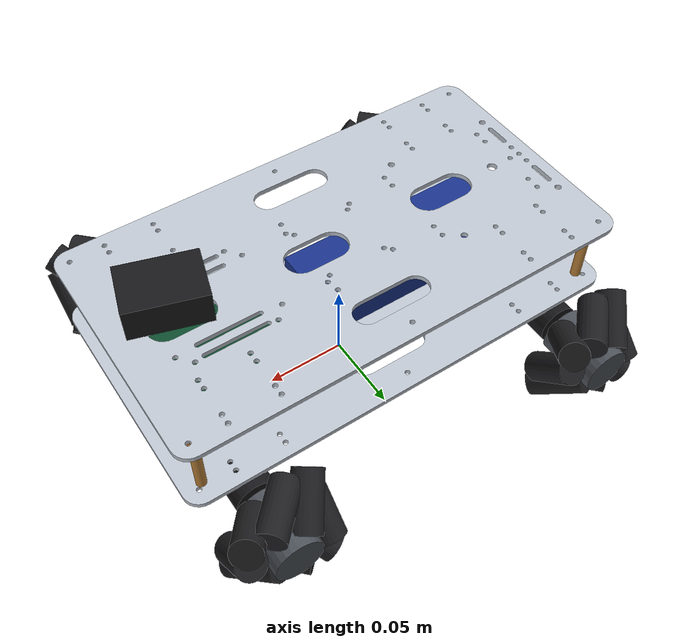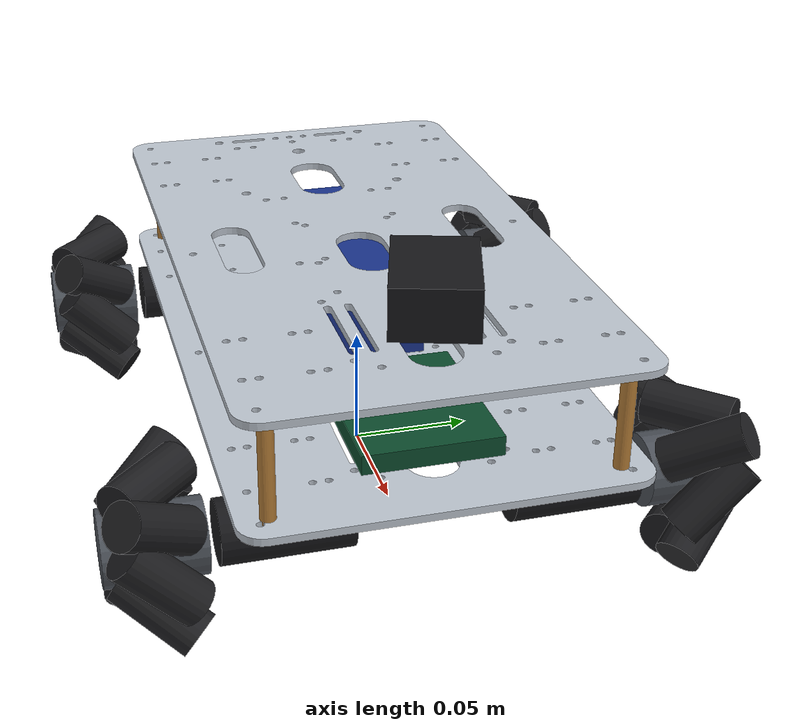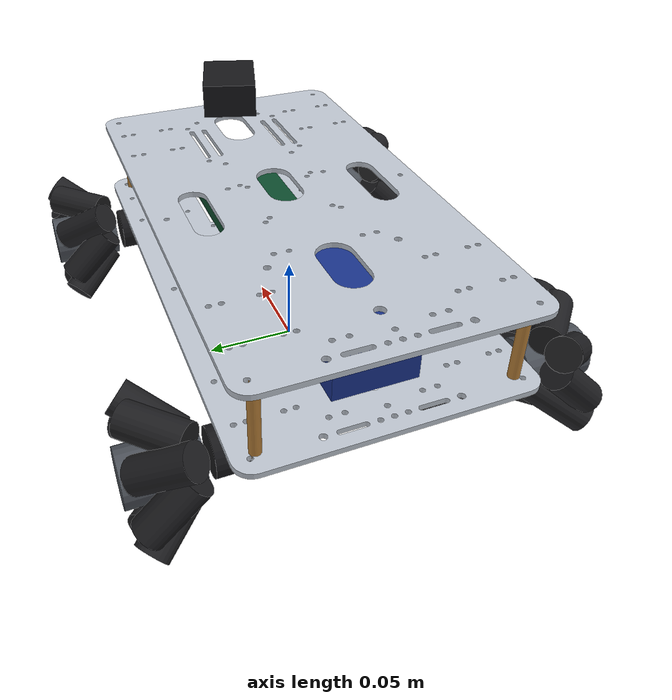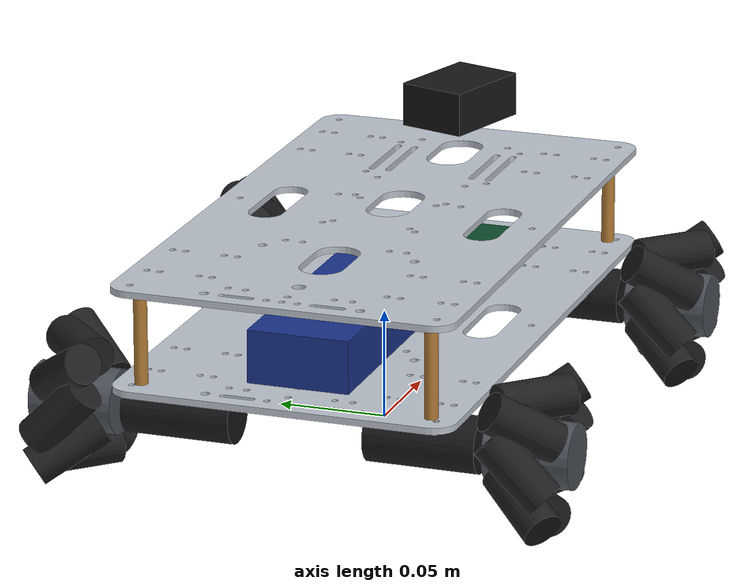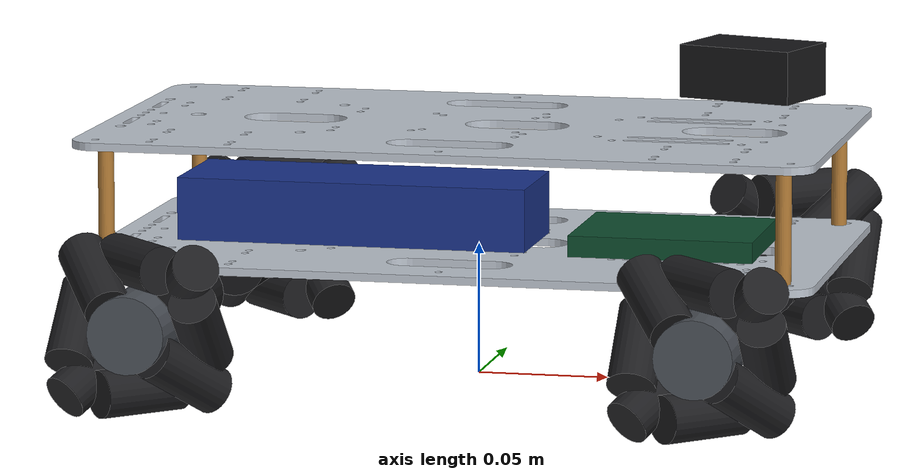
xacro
<?xml version="1.0"?>
<robot xmlns:xacro="http://www.ros.org/wiki/xacro" name="c26_car">

  <!-- ================= 可调参数 ================= -->
  <xacro:arg name="prefix" default=""/>
  <xacro:arg name="upper_plate" default="true"/>   <!-- 是否带第二层板 -->
  <xacro:arg name="lidar" default="false"/>
  <xacro:arg name="planar_drive" default="false"/> <!-- 是否启用整机平面速度驱动 -->

  <!-- planar 模式：车体速度由 Gazebo 直接给定，轮子只为外观服务。
       此时去掉滚子碰撞、轮子摩擦调到≈0，既省算力又让横移/自转接近理论值。 -->
  <xacro:property name="planar_on" value="${'$(arg planar_drive)' == 'true'}"/>
  <xacro:property name="wheel_collision" value="${not planar_on}"/>
  <xacro:property name="wheel_mu" value="${0.02 if planar_on else 1.0}"/>

  <xacro:property name="prefix" value="$(arg prefix)"/>

  <!-- 底板 -->
  <xacro:property name="plate_len" value="0.280"/>
  <xacro:property name="plate_wid" value="0.155"/>
  <xacro:property name="plate_thk" value="0.003"/>
  <xacro:property name="plate_bottom" value="0.048"/>   <!-- 底板下表面高度 -->
  <xacro:property name="layer_gap" value="0.045"/>      <!-- 层间距 -->

  <!-- 麦轮 -->
  <xacro:property name="wheel_r" value="0.0325"/>
  <xacro:property name="wheel_w" value="0.038"/>
  <xacro:property name="roller_r" value="0.009"/>
  <xacro:property name="roller_n" value="8"/>
  <xacro:property name="roller_len" value="0.034"/>
  <xacro:property name="rim_r" value="${wheel_r - roller_r}"/>
  <!-- 轮毂半径必须小于 rim_r，只让滚子接触地面，否则麦轮退化成普通轮 -->
  <xacro:property name="hub_r" value="${rim_r - roller_r}"/>

  <!-- 轮距 / 轴距 -->
  <xacro:property name="wheel_x" value="0.105"/>
  <xacro:property name="wheel_y" value="0.1035"/>
  <xacro:property name="wheel_z" value="${wheel_r}"/>

  <!-- 质量 -->
  <xacro:property name="mass_plate" value="0.35"/>
  <xacro:property name="mass_battery" value="0.45"/>
  <xacro:property name="mass_motor" value="0.152"/>
  <xacro:property name="mass_wheel" value="0.060"/>
  <xacro:property name="mass_board" value="0.050"/>

  <!-- ================= 惯性宏 ================= -->
  <xacro:macro name="box_inertial" params="mass x y z">
    <inertial>
      <mass value="${mass}"/>
      <inertia ixx="${mass*(y*y+z*z)/12.0}" ixy="0" ixz="0"
               iyy="${mass*(x*x+z*z)/12.0}" iyz="0"
               izz="${mass*(x*x+y*y)/12.0}"/>
    </inertial>
  </xacro:macro>

  <xacro:macro name="cyl_inertial" params="mass r h">
    <inertial>
      <mass value="${mass}"/>
      <inertia ixx="${mass*(3*r*r+h*h)/12.0}" ixy="0" ixz="0"
               iyy="${mass*(3*r*r+h*h)/12.0}" iyz="0"
               izz="${mass*r*r/2.0}"/>
    </inertial>
  </xacro:macro>

  <!-- ================= 材质 ================= -->
  <material name="alu"><color rgba="0.75 0.78 0.82 1"/></material>
  <material name="brass"><color rgba="0.72 0.50 0.22 1"/></material>
  <material name="black"><color rgba="0.09 0.09 0.10 1"/></material>
  <material name="rubber"><color rgba="0.12 0.12 0.13 1"/></material>
  <material name="wheel_grey"><color rgba="0.30 0.32 0.35 1"/></material>
  <material name="pcb"><color rgba="0.05 0.30 0.18 1"/></material>
  <material name="batt"><color rgba="0.10 0.20 0.55 1"/></material>

  <!-- 来自 C26底板240712.dxf，按原轮廓和孔位挤出，网格坐标单位为米。 -->
  <xacro:macro name="c26_plate_visual">
    <visual>
      <geometry><mesh filename="package://c26_car_description/meshes/c26_base_plate.stl"/></geometry>
      <material name="alu"/>
    </visual>
  </xacro:macro>

  <link name="${prefix}base_footprint"/>

  <joint name="${prefix}base_joint" type="fixed">
    <parent link="${prefix}base_footprint"/>
    <child link="${prefix}base_link"/>
    <origin xyz="0 0 ${plate_bottom + plate_thk/2}" rpy="0 0 0"/>
  </joint>

  <!-- 底板 -->
  <link name="${prefix}base_link">
    <xacro:c26_plate_visual/>
    <collision>
      <geometry><box size="${plate_len} ${plate_wid} ${plate_thk}"/></geometry>
    </collision>
    <xacro:box_inertial mass="${mass_plate}" x="${plate_len}" y="${plate_wid}" z="${plate_thk}"/>
  </link>

  <!-- ================= 电池 / 控制板 ================= -->
  <link name="${prefix}battery_link">
    <visual>
      <origin xyz="0 0 0"/>
      <geometry><box size="0.135 0.046 0.024"/></geometry>
      <material name="batt"/>
    </visual>
    <collision><geometry><box size="0.135 0.046 0.024"/></geometry></collision>
    <xacro:box_inertial mass="${mass_battery}" x="0.135" y="0.046" z="0.024"/>
  </link>
  <joint name="${prefix}battery_joint" type="fixed">
    <parent link="${prefix}base_link"/>
    <child link="${prefix}battery_link"/>
    <origin xyz="-0.045 0.000 ${plate_thk/2 + 0.012}" rpy="0 0 0"/>
  </joint>

  <link name="${prefix}mcu_link">
    <visual>
      <geometry><box size="0.070 0.055 0.008"/></geometry>
      <material name="pcb"/>
    </visual>
    <collision><geometry><box size="0.070 0.055 0.008"/></geometry></collision>
    <xacro:box_inertial mass="${mass_board}" x="0.070" y="0.055" z="0.008"/>
  </link>
  <joint name="${prefix}mcu_joint" type="fixed">
    <parent link="${prefix}base_link"/>
    <child link="${prefix}mcu_link"/>
    <origin xyz="0.075 0.000 ${plate_thk/2 + 0.004}" rpy="0 0 0"/>
  </joint>

  <!-- ================= 第二层板 + 支撑柱 ================= -->
  <xacro:if value="$(arg upper_plate)">
    <xacro:property name="upper_z" value="${plate_bottom + plate_thk + layer_gap + plate_thk/2}"/>

    <link name="${prefix}upper_plate_link">
      <xacro:c26_plate_visual/>
      <collision><geometry><box size="${plate_len} ${plate_wid} ${plate_thk}"/></geometry></collision>
      <xacro:box_inertial mass="${mass_plate}" x="${plate_len}" y="${plate_wid}" z="${plate_thk}"/>
    </link>
    <joint name="${prefix}upper_plate_joint" type="fixed">
      <parent link="${prefix}base_link"/>
      <child link="${prefix}upper_plate_link"/>
      <origin xyz="0 0 ${layer_gap}" rpy="0 0 0"/>
    </joint>

    <!-- 4 根 45mm 铜柱 -->
    <xacro:macro name="standoff" params="name x y">
      <link name="${prefix}${name}">
        <visual>
          <geometry><cylinder radius="0.003" length="${layer_gap}"/></geometry>
          <material name="brass"/>
        </visual>
        <collision><geometry><cylinder radius="0.003" length="${layer_gap}"/></geometry></collision>
        <xacro:cyl_inertial mass="0.008" r="0.003" h="${layer_gap}"/>
      </link>
      <joint name="${prefix}${name}_joint" type="fixed">
        <parent link="${prefix}base_link"/>
        <child link="${prefix}${name}"/>
        <origin xyz="${x} ${y} ${layer_gap/2}" rpy="0 0 0"/>
      </joint>
    </xacro:macro>

    <xacro:standoff name="post_fl" x="${plate_len/2 - 0.012}" y="${plate_wid/2 - 0.012}"/>
    <xacro:standoff name="post_fr" x="${plate_len/2 - 0.012}" y="${-(plate_wid/2 - 0.012)}"/>
    <xacro:standoff name="post_rl" x="${-(plate_len/2 - 0.012)}" y="${plate_wid/2 - 0.012}"/>
    <xacro:standoff name="post_rr" x="${-(plate_len/2 - 0.012)}" y="${-(plate_wid/2 - 0.012)}"/>

    <!-- 顶板上的 OpenMV 摄像头支架（后续视觉仿真用） -->
    <link name="${prefix}camera_link">
      <visual>
        <geometry><box size="0.045 0.032 0.020"/></geometry>
        <material name="black"/>
      </visual>
      <collision><geometry><box size="0.045 0.032 0.020"/></geometry></collision>
      <xacro:box_inertial mass="0.020" x="0.045" y="0.032" z="0.020"/>
    </link>
    <joint name="${prefix}camera_joint" type="fixed">
      <parent link="${prefix}upper_plate_link"/>
      <child link="${prefix}camera_link"/>
      <origin xyz="0.105 0 ${plate_thk/2 + 0.024}" rpy="0 0 -0.30"/>
    </joint>
  </xacro:if>

  <xacro:if value="$(arg lidar)">
    <link name="${prefix}lidar_link">
      <visual>
        <geometry><cylinder radius="0.027" length="0.022"/></geometry>
        <material name="black"/>
      </visual>
    </link>
    <joint name="${prefix}lidar_joint" type="fixed">
      <parent link="${prefix}base_link"/>
      <child link="${prefix}lidar_link"/>
      <origin xyz="0 0 0.105"/>
    </joint>
    <gazebo reference="${prefix}lidar_link">
      <sensor name="c26_lidar" type="gpu_lidar">
        <frame_id>${prefix}lidar_link</frame_id>
        <topic>/c26/scan</topic>
        <always_on>true</always_on>
        <update_rate>8</update_rate>
        <lidar>
          <scan><horizontal>
            <samples>360</samples>
            <resolution>1</resolution>
            <min_angle>-${pi}</min_angle>
            <max_angle>${pi}</max_angle>
          </horizontal></scan>
          <range><min>0.06</min><max>7.0</max><resolution>0.01</resolution></range>
        </lidar>
      </sensor>
    </gazebo>
  </xacro:if>

  <!-- ================= 麦轮 ================= -->
  <!--
    每个麦轮 = 轮毂(圆柱) + N 个 45° 斜置滚子(圆柱)。
    滚子轴线与轮轴成 45°，是麦轮能横移的物理来源；
    滚子 rpy = (mirror * -pi/4, theta, 0)，theta 为轮缘圆周角。
  -->
  <xacro:macro name="roller_ring" params="wheel mirror i n">
    <xacro:if value="${i &lt; n}">
      <xacro:property name="theta" value="${2*pi*i/n}"/>
      <xacro:property name="alpha" value="${(0.0 if mirror &gt; 0 else pi/2) - pi/4}"/>
      <!-- 滚子必须是自由自转的关节，否则麦轮退化成带齿的普通轮，无法横移 -->
      <link name="${wheel}_roller_${i}">
        <visual>
          <geometry><cylinder radius="${roller_r}" length="${roller_len}"/></geometry>
          <material name="rubber"/>
        </visual>
        <!-- planar 模式下不需要滚子碰撞（节省大量接触计算，GUI 才跑得动） -->
        <xacro:if value="${not wheel_collision}">
          <collision>
            <geometry><cylinder radius="${roller_r}" length="${roller_len}"/></geometry>
          </collision>
        </xacro:if>
        <xacro:cyl_inertial mass="0.003" r="${roller_r}" h="${roller_len}"/>
      </link>
      <joint name="${wheel}_roller_${i}_joint" type="continuous">
        <parent link="${wheel}"/>
        <child link="${wheel}_roller_${i}"/>
        <origin xyz="${rim_r*cos(theta)} 0 ${rim_r*sin(theta)}" rpy="${alpha} ${theta} 0"/>
        <axis xyz="0 0 1"/>
        <dynamics damping="0.0005" friction="0.0"/>
      </joint>
      <xacro:roller_ring wheel="${wheel}" mirror="${mirror}" i="${i+1}" n="${n}"/>
    </xacro:if>
  </xacro:macro>

  <xacro:macro name="mecanum_wheel" params="name x y mirror">
    <!-- mirror = +1: 左侧(y>0) 滚子斜向 +45°，-1: 右侧 -->
    <link name="${prefix}${name}">
      <visual>
        <origin xyz="0 0 0" rpy="${pi/2} 0 0"/>
        <geometry><cylinder radius="${hub_r}" length="${wheel_w}"/></geometry>
        <material name="wheel_grey"/>
      </visual>
      <xacro:if value="${wheel_collision}">
        <!-- 接触模式：用缩小的轮毂，让滚子着地 -->
        <collision>
          <origin xyz="0 0 0" rpy="${pi/2} 0 0"/>
          <geometry><cylinder radius="${hub_r}" length="${wheel_w}"/></geometry>
        </collision>
      </xacro:if>
      <xacro:unless value="${wheel_collision}">
        <!-- planar 模式：整圆轮子只负责把车撑起来（摩擦≈0，不阻碍滑移） -->
        <collision>
          <origin xyz="0 0 0" rpy="${pi/2} 0 0"/>
          <geometry><cylinder radius="${wheel_r}" length="${wheel_w}"/></geometry>
        </collision>
      </xacro:unless>
      <xacro:cyl_inertial mass="${mass_wheel}" r="${wheel_r}" h="${wheel_w}"/>
    </link>

    <joint name="${prefix}${name}_joint" type="continuous">
      <parent link="${prefix}base_link"/>
      <child link="${prefix}${name}"/>
      <origin xyz="${x} ${y} ${wheel_z - (plate_bottom + plate_thk/2)}" rpy="0 0 0"/>
      <axis xyz="0 1 0"/>
      <dynamics damping="0.02" friction="0.0"/>
      <limit effort="2.0" velocity="40.0"/>
    </joint>

    <xacro:roller_ring wheel="${prefix}${name}" mirror="${mirror}" i="0" n="${roller_n}"/>

    <!-- 520 电机（外观件，与底板固连） -->
    <link name="${prefix}${name}_motor">
      <visual>
        <origin xyz="0 0 0" rpy="${pi/2} 0 0"/>
        <geometry><cylinder radius="0.0125" length="0.050"/></geometry>
        <material name="black"/>
      </visual>
      <xacro:cyl_inertial mass="${mass_motor}" r="0.0125" h="0.050"/>
    </link>
    <joint name="${prefix}${name}_motor_joint" type="fixed">
      <parent link="${prefix}base_link"/>
      <child link="${prefix}${name}_motor"/>
      <origin xyz="${x} ${y - mirror*0.048} ${wheel_z - (plate_bottom + plate_thk/2)}" rpy="0 0 0"/>
    </joint>

    <!-- 速度控制（每个轮子一个独立 topic） -->
    <gazebo>
      <plugin filename="gz-sim-joint-controller-system"
              name="gz::sim::systems::JointController">
        <joint_name>${prefix}${name}_joint</joint_name>
        <use_velocity_commands>true</use_velocity_commands>
        <topic>/${prefix}${name}/cmd_vel</topic>
      </plugin>
    </gazebo>

    <gazebo reference="${prefix}${name}">
      <mu1>${wheel_mu}</mu1>
      <mu2>${wheel_mu}</mu2>
      <kp>1000000.0</kp>
      <kd>100.0</kd>
      <minDepth>0.0005</minDepth>
      <maxVel>0.1</maxVel>
    </gazebo>

    <gazebo reference="${prefix}${name}_roller_0"><mu1>1.2</mu1><mu2>1.2</mu2></gazebo>
  </xacro:macro>

  <!--
    左右分组：左侧两轮滚子斜向相同，右侧两轮相反。
    实测这套布置下「前进/后退/原地旋转」与 /cmd_vel 的麦轮解算一致。
  -->
  <xacro:mecanum_wheel name="wheel_fl" x="${wheel_x}"  y="${wheel_y}"  mirror="1"/>
  <xacro:mecanum_wheel name="wheel_fr" x="${wheel_x}"  y="${-wheel_y}" mirror="-1"/>
  <xacro:mecanum_wheel name="wheel_rl" x="${-wheel_x}" y="${wheel_y}"  mirror="1"/>
  <xacro:mecanum_wheel name="wheel_rr" x="${-wheel_x}" y="${-wheel_y}" mirror="-1"/>

  <!-- ================= 整车 Gazebo 插件 ================= -->
  <gazebo>
    <plugin filename="gz-sim-joint-state-publisher-system"
            name="gz::sim::systems::JointStatePublisher">
      <topic>/model/c26/joint_state</topic>
    </plugin>
    <plugin filename="gz-sim-odometry-publisher-system"
            name="gz::sim::systems::OdometryPublisher">
      <odom_frame>odom</odom_frame>
      <robot_base_frame>base_footprint</robot_base_frame>
      <odom_topic>/model/c26/odometry</odom_topic>
      <dimensions>2</dimensions>
      <odom_publish_frequency>30</odom_publish_frequency>
    </plugin>
    <plugin filename="gz-sim-pose-publisher-system"
            name="gz::sim::systems::PosePublisher">
      <publish_link_pose>true</publish_link_pose>
      <publish_pose>true</publish_pose>
      <publish_visual_pose>false</publish_visual_pose>
      <publish_sensor_pose>false</publish_sensor_pose>
      <use_pose_vector_msg>false</use_pose_vector_msg>
      <static_publisher>true</static_publisher>
      <update_frequency>30</update_frequency>
    </plugin>
  </gazebo>

  <!--
    平面速度驱动（可选）：planar_drive:=true 时由 Gazebo 直接给车体设定平面速度，
    横移/原地旋转与真实麦轮运动学完全一致；轮子仍按解算转速转动（纯视觉）。
    适合测试巡线、视觉、导航等上层逻辑。
  -->
  <xacro:if value="$(arg planar_drive)">
    <gazebo>
      <plugin filename="gz-sim-velocity-control-system"
              name="gz::sim::systems::VelocityControl">
        <topic>/model/c26/cmd_vel_planar</topic>
      </plugin>
    </gazebo>
  </xacro:if>
</robot>
